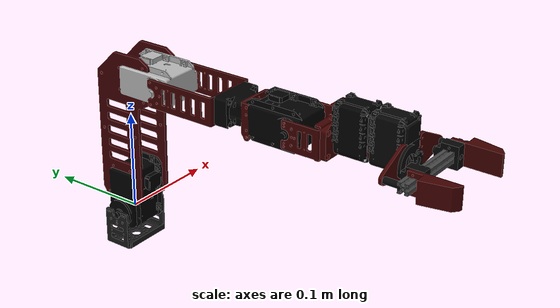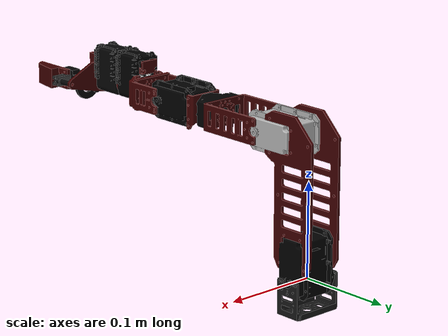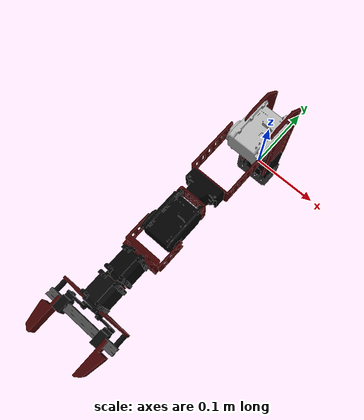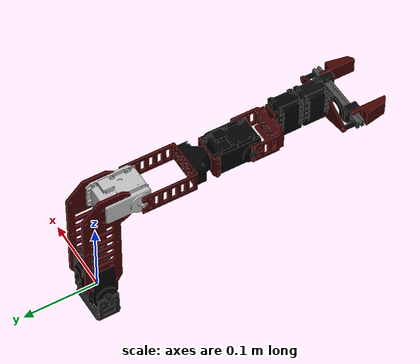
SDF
<sdf version='1.9'>
  <model name='widow_xl'>
    <link name='widow_xl_base'>
      <inertial>
        <pose>0 0 0 0 0 0</pose>
        <mass>0.20000000000000001</mass>
        <inertia>
          <ixx>0.0001</ixx>
          <ixy>0</ixy>
          <ixz>0</ixz>
          <iyy>0.0001</iyy>
          <iyz>0</iyz>
          <izz>0.0001</izz>
        </inertia>
      </inertial>
      <collision name='widow_xl_base_fixed_joint_lump__shoulder_mount_collision'>
        <pose>0 0 0 0 0 0</pose>
        <geometry>
          <box>
            <size>0.07 0.07 0.05</size>
          </box>
        </geometry>
      </collision>
      <visual name='widow_xl_base_fixed_joint_lump__shoulder_mount_visual'>
        <pose>0 0 0 0 0 0</pose>
        <geometry>
          <mesh>
            <scale>1 1 1</scale>
            <uri>model://widow_xl/meshes/shoulder_mount.dae</uri>
          </mesh>
        </geometry>
      </visual>
    </link>
    <joint name='shoulder_joint' type='revolute'>
      <pose relative_to='widow_xl_base'>0 0 0 0 0 0</pose>
      <parent>widow_xl_base</parent>
      <child>shoulder_link</child>
      <axis>
        <xyz>1 0 0</xyz>
        <limit>
          <lower>-1.5700000000000001</lower>
          <upper>1.5700000000000001</upper>
          <effort>1000</effort>
          <velocity>1</velocity>
        </limit>
        <dynamics>
          <damping>5</damping>
          <friction>0.5</friction>
          <spring_reference>0</spring_reference>
          <spring_stiffness>0</spring_stiffness>
        </dynamics>
      </axis>
    </joint>
    <link name='shoulder_link'>
      <pose relative_to='shoulder_joint'>0 0 0 0 0 0</pose>
      <inertial>
        <pose>0 -0.025 0.07000000000000001 0 0 0</pose>
        <mass>0.29999999999999999</mass>
        <inertia>
          <ixx>0.00050000000000000001</ixx>
          <ixy>0</ixy>
          <ixz>0</ixz>
          <iyy>0.00050000000000000001</iyy>
          <iyz>0</iyz>
          <izz>0.0001</izz>
        </inertia>
      </inertial>
      <collision name='shoulder_link_collision'>
        <pose>0 -0.025 0.07000000000000001 0 0 0</pose>
        <geometry>
          <cylinder>
            <length>0.14499999999999999</length>
            <radius>0.029999999999999999</radius>
          </cylinder>
        </geometry>
      </collision>
      <visual name='shoulder_link_visual'>
        <pose>0 0 0 0 0 0</pose>
        <geometry>
          <mesh>
            <scale>1 1 1</scale>
            <uri>model://widow_xl/meshes/shoulder.dae</uri>
          </mesh>
        </geometry>
      </visual>
    </link>
    <joint name='forearm_joint' type='revolute'>
      <pose relative_to='shoulder_link'>0 -0.0525 0.145 0 0 0</pose>
      <parent>shoulder_link</parent>
      <child>forearm_link</child>
      <axis>
        <xyz>1 0 0</xyz>
        <limit>
          <lower>-1.5700000000000001</lower>
          <upper>1.5700000000000001</upper>
          <effort>1000</effort>
          <velocity>1</velocity>
        </limit>
        <dynamics>
          <damping>5</damping>
          <friction>0.5</friction>
          <spring_reference>0</spring_reference>
          <spring_stiffness>0</spring_stiffness>
        </dynamics>
      </axis>
    </joint>
    <link name='forearm_link'>
      <pose relative_to='forearm_joint'>0 0 0 0 0 0</pose>
      <inertial>
        <pose>0 -0.075 0 0 0 0</pose>
        <mass>0.25</mass>
        <inertia>
          <ixx>0.00050000000000000001</ixx>
          <ixy>0</ixy>
          <ixz>0</ixz>
          <iyy>0.0001</iyy>
          <iyz>0</iyz>
          <izz>0.00050000000000000001</izz>
        </inertia>
      </inertial>
      <collision name='forearm_link_collision'>
        <pose>0 -0.075 0 0 0 0</pose>
        <geometry>
          <cylinder>
            <length>0.14999999999999999</length>
            <radius>0.025000000000000001</radius>
          </cylinder>
        </geometry>
      </collision>
      <visual name='forearm_link_visual'>
        <pose>0 0 0 0 0 0</pose>
        <geometry>
          <mesh>
            <scale>1 1 1</scale>
            <uri>model://widow_xl/meshes/forearm.dae</uri>
          </mesh>
        </geometry>
      </visual>
    </link>
    <joint name='wrist_joint' type='revolute'>
      <pose relative_to='forearm_link'>0 -0.15 0 0 0 0</pose>
      <parent>forearm_link</parent>
      <child>wrist_link</child>
      <axis>
        <xyz>1 0 0</xyz>
        <limit>
          <lower>-1.5700000000000001</lower>
          <upper>1.5700000000000001</upper>
          <effort>1000</effort>
          <velocity>1</velocity>
        </limit>
        <dynamics>
          <damping>5</damping>
          <friction>0.5</friction>
          <spring_reference>0</spring_reference>
          <spring_stiffness>0</spring_stiffness>
        </dynamics>
      </axis>
    </joint>
    <link name='wrist_link'>
      <pose relative_to='wrist_joint'>0 0 0 0 0 0</pose>
      <inertial>
        <pose>0 -0.0375 0 0 0 0</pose>
        <mass>0.14999999999999999</mass>
        <inertia>
          <ixx>0.0001</ixx>
          <ixy>0</ixy>
          <ixz>0</ixz>
          <iyy>5.0000000000000002e-05</iyy>
          <iyz>0</iyz>
          <izz>0.0001</izz>
        </inertia>
      </inertial>
      <collision name='wrist_link_collision'>
        <pose>0 -0.0375 0 0 0 0</pose>
        <geometry>
          <cylinder>
            <length>0.074999999999999997</length>
            <radius>0.02</radius>
          </cylinder>
        </geometry>
      </collision>
      <visual name='wrist_link_visual'>
        <pose>0 0 0 0 0 0</pose>
        <geometry>
          <mesh>
            <scale>1 1 1</scale>
            <uri>model://widow_xl/meshes/wrist.dae</uri>
          </mesh>
        </geometry>
      </visual>
    </link>
    <joint name='wrist_rotate_joint' type='revolute'>
      <pose relative_to='wrist_link'>0 -0.075 0 0 0 -1.57</pose>
      <parent>wrist_link</parent>
      <child>wrist_rotate_link</child>
      <axis>
        <xyz>1 0 0</xyz>
        <limit>
          <lower>-1.5700000000000001</lower>
          <upper>1.5700000000000001</upper>
          <effort>1000</effort>
          <velocity>1</velocity>
        </limit>
        <dynamics>
          <damping>5</damping>
          <friction>0.5</friction>
          <spring_reference>0</spring_reference>
          <spring_stiffness>0</spring_stiffness>
        </dynamics>
      </axis>
    </joint>
    <link name='wrist_rotate_link'>
      <pose relative_to='wrist_rotate_joint'>0 0 0 0 0 0</pose>
      <inertial>
        <pose>0.02 0 0 0 0 0</pose>
        <mass>0.10000000000000001</mass>
        <inertia>
          <ixx>5.0000000000000002e-05</ixx>
          <ixy>0</ixy>
          <ixz>0</ixz>
          <iyy>5.0000000000000002e-05</iyy>
          <iyz>0</iyz>
          <izz>5.0000000000000002e-05</izz>
        </inertia>
      </inertial>
      <collision name='wrist_rotate_link_collision'>
        <pose>0.02 0 0 0 0 0</pose>
        <geometry>
          <cylinder>
            <length>0.040000000000000001</length>
            <radius>0.02</radius>
          </cylinder>
        </geometry>
      </collision>
      <visual name='wrist_rotate_link_visual'>
        <pose>0 0 0 0 0 0</pose>
        <geometry>
          <mesh>
            <scale>1 1 1</scale>
            <uri>model://widow_xl/meshes/wrist_rotate.dae</uri>
          </mesh>
        </geometry>
      </visual>
    </link>
    <joint name='left_finger_joint' type='prismatic'>
      <pose relative_to='wrist_rotate_link'>0.0575 0.035 0 0 0 0</pose>
      <parent>wrist_rotate_link</parent>
      <child>left_finger_link</child>
      <axis>
        <xyz>0 -1 0</xyz>
        <limit>
          <lower>0</lower>
          <upper>0.032500000000000001</upper>
          <effort>1000</effort>
          <velocity>1</velocity>
        </limit>
        <dynamics>
          <damping>5</damping>
          <friction>0.5</friction>
          <spring_reference>0</spring_reference>
          <spring_stiffness>0</spring_stiffness>
        </dynamics>
      </axis>
    </joint>
    <link name='left_finger_link'>
      <pose relative_to='left_finger_joint'>0 0 0 0 0 0</pose>
      <inertial>
        <pose>0 0 0 0 0 0</pose>
        <mass>0.050000000000000003</mass>
        <inertia>
          <ixx>1.0000000000000001e-05</ixx>
          <ixy>0</ixy>
          <ixz>0</ixz>
          <iyy>1.0000000000000001e-05</iyy>
          <iyz>0</iyz>
          <izz>1.0000000000000001e-05</izz>
        </inertia>
      </inertial>
      <collision name='left_finger_link_collision'>
        <pose>0 0 0 0 0 0</pose>
        <geometry>
          <box>
            <size>0.015 0.03 0.04</size>
          </box>
        </geometry>
      </collision>
      <visual name='left_finger_link_visual'>
        <pose>0 0 0 0 0 1.57</pose>
        <geometry>
          <mesh>
            <scale>1 1 1</scale>
            <uri>model://widow_xl/meshes/finger.dae</uri>
          </mesh>
        </geometry>
      </visual>
    </link>
    <joint name='right_finger_joint' type='prismatic'>
      <pose relative_to='wrist_rotate_link'>0.0575 -0.035 0 0 0 0</pose>
      <parent>wrist_rotate_link</parent>
      <child>right_finger_link</child>
      <axis>
        <xyz>0 1 0</xyz>
        <limit>
          <lower>0</lower>
          <upper>0.032500000000000001</upper>
          <effort>1000</effort>
          <velocity>1</velocity>
        </limit>
        <dynamics>
          <damping>5</damping>
          <friction>0.5</friction>
          <spring_reference>0</spring_reference>
          <spring_stiffness>0</spring_stiffness>
        </dynamics>
      </axis>
    </joint>
    <link name='right_finger_link'>
      <pose relative_to='right_finger_joint'>0 0 0 0 0 0</pose>
      <inertial>
        <pose>0 0 0 0 0 0</pose>
        <mass>0.050000000000000003</mass>
        <inertia>
          <ixx>1.0000000000000001e-05</ixx>
          <ixy>0</ixy>
          <ixz>0</ixz>
          <iyy>1.0000000000000001e-05</iyy>
          <iyz>0</iyz>
          <izz>1.0000000000000001e-05</izz>
        </inertia>
      </inertial>
      <collision name='right_finger_link_collision'>
        <pose>0 0 0 0 0 0</pose>
        <geometry>
          <box>
            <size>0.015 0.03 0.04</size>
          </box>
        </geometry>
      </collision>
      <visual name='right_finger_link_visual'>
        <pose>0 0 0 3.14159 0 -1.57</pose>
        <geometry>
          <mesh>
            <scale>1 1 1</scale>
            <uri>model://widow_xl/meshes/finger.dae</uri>
          </mesh>
        </geometry>
      </visual>
    </link>
    <frame name='mount_joint' attached_to='widow_xl_base'>
      <pose>0 0 0 0 -0 0</pose>
    </frame>
    <frame name='shoulder_mount' attached_to='mount_joint'/>
    <frame name='gripper_joint' attached_to='wrist_rotate_link'>
      <pose>0.0575 0 0 0 -0 0</pose>
    </frame>
    <frame name='gripper_link' attached_to='gripper_joint'/>
  </model>
</sdf>
